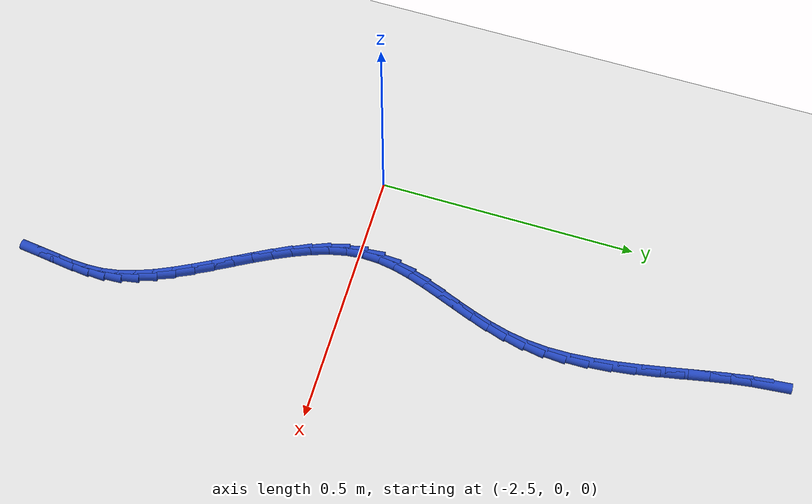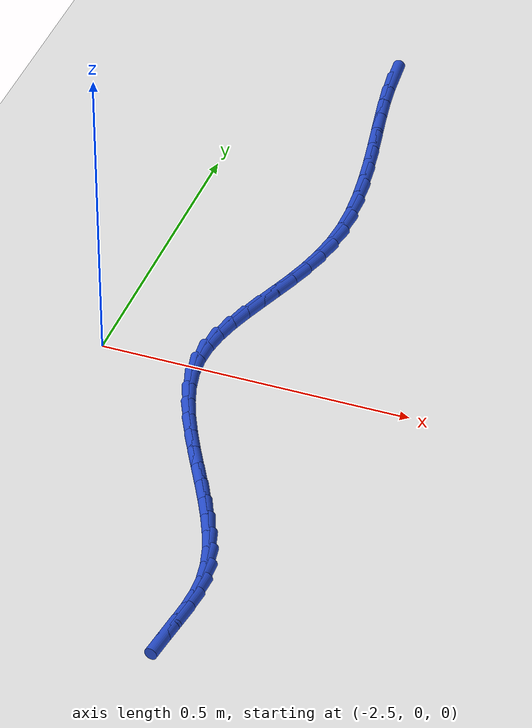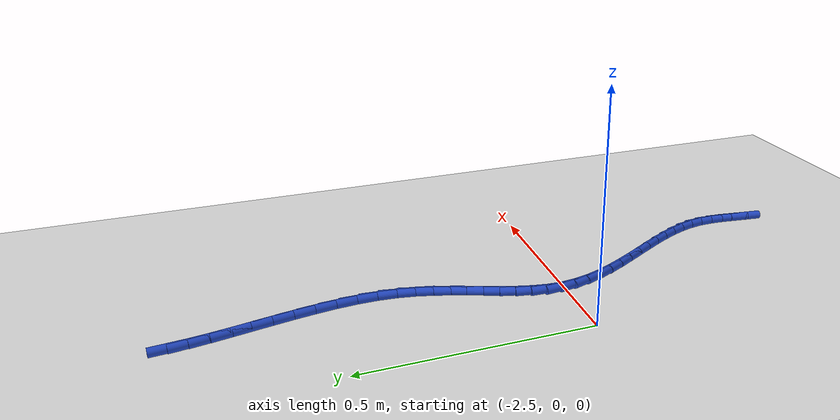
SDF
<sdf version="1.6">
 <world name="default">
  <model name="ground_plane">
   <static>1</static>
   <link name="link">
    <collision name="collision">
     <geometry><plane><normal>0 0 1</normal><size>100 100</size></plane></geometry>
     <surface><friction><ode><mu>100</mu><mu2>50</mu2></ode></friction></surface>
    </collision>
    <visual name="visual">
     <cast_shadows>0</cast_shadows>
     <geometry><plane><normal>0 0 1</normal><size>100 100</size></plane></geometry>
     <material>
      <script><uri>file://media/materials/scripts/gazebo.material</uri><name>Gazebo/WhiteGlow</name></script>
     </material>
    </visual>
   </link>
  </model>
  <model name="line">
   <link name="link_101">
    <pose>-2.3047676219274273 0.8106523391239772 0.01 0 1.57 -1.476728162494435</pose>
    <collision name="collision">
     <geometry><cylinder><radius>0.01</radius><length>0.08</length></cylinder></geometry>
    </collision>
    <visual name="visual">
     <material>
      <script><name>Gazebo/Blue</name><uri>file://media/materials/scripts/gazebo.material</uri></script>
     </material>
     <geometry><cylinder><radius>0.01</radius><length>0.08</length></cylinder></geometry>
    </visual>
   </link>
   <link name="link_102">
    <pose>-2.301472422030796 0.7757258085661666 0.01 0 1.57 -1.424585987573197</pose>
    <collision name="collision">
     <geometry><cylinder><radius>0.01</radius><length>0.08</length></cylinder></geometry>
    </collision>
    <visual name="visual">
     <material>
      <script><name>Gazebo/Blue</name><uri>file://media/materials/scripts/gazebo.material</uri></script>
     </material>
     <geometry><cylinder><radius>0.01</radius><length>0.08</length></cylinder></geometry>
    </visual>
   </link>
   <link name="link_103">
    <pose>-2.2959237080235573 0.7380464048490337 0.01 0 1.57 -1.3935737153858418</pose>
    <collision name="collision">
     <geometry><cylinder><radius>0.01</radius><length>0.08</length></cylinder></geometry>
    </collision>
    <visual name="visual">
     <material>
      <script><name>Gazebo/Blue</name><uri>file://media/materials/scripts/gazebo.material</uri></script>
     </material>
     <geometry><cylinder><radius>0.01</radius><length>0.08</length></cylinder></geometry>
    </visual>
   </link>
   <link name="link_104">
    <pose>-2.2887683608237617 0.6980950778008433 0.01 0 1.57 -1.378781988183051</pose>
    <collision name="collision">
     <geometry><cylinder><radius>0.01</radius><length>0.08</length></cylinder></geometry>
    </collision>
    <visual name="visual">
     <material>
      <script><name>Gazebo/Blue</name><uri>file://media/materials/scripts/gazebo.material</uri></script>
     </material>
     <geometry><cylinder><radius>0.01</radius><length>0.08</length></cylinder></geometry>
    </visual>
   </link>
   <link name="link_105">
    <pose>-2.280653261349464 0.6563527772498619 0.01 0 1.57 -1.3774799241500921</pose>
    <collision name="collision">
     <geometry><cylinder><radius>0.01</radius><length>0.08</length></cylinder></geometry>
    </collision>
    <visual name="visual">
     <material>
      <script><name>Gazebo/Blue</name><uri>file://media/materials/scripts/gazebo.material</uri></script>
     </material>
     <geometry><cylinder><radius>0.01</radius><length>0.08</length></cylinder></geometry>
    </visual>
   </link>
   <link name="link_106">
    <pose>-2.2722252905187155 0.6133004530243545 0.01 0 1.57 -1.3883955878680676</pose>
    <collision name="collision">
     <geometry><cylinder><radius>0.01</radius><length>0.08</length></cylinder></geometry>
    </collision>
    <visual name="visual">
     <material>
      <script><name>Gazebo/Blue</name><uri>file://media/materials/scripts/gazebo.material</uri></script>
     </material>
     <geometry><cylinder><radius>0.01</radius><length>0.08</length></cylinder></geometry>
    </visual>
   </link>
   <link name="link_107">
    <pose>-2.2641313292495697 0.5694190549525865 0.01 0 1.57 -1.411339892921997</pose>
    <collision name="collision">
     <geometry><cylinder><radius>0.01</radius><length>0.08</length></cylinder></geometry>
    </collision>
    <visual name="visual">
     <material>
      <script><name>Gazebo/Blue</name><uri>file://media/materials/scripts/gazebo.material</uri></script>
     </material>
     <geometry><cylinder><radius>0.01</radius><length>0.08</length></cylinder></geometry>
    </visual>
   </link>
   <link name="link_108">
    <pose>-2.2570182584600778 0.5251895328628228 0.01 0 1.57 -1.4470395061883565</pose>
    <collision name="collision">
     <geometry><cylinder><radius>0.01</radius><length>0.08</length></cylinder></geometry>
    </collision>
    <visual name="visual">
     <material>
      <script><name>Gazebo/Blue</name><uri>file://media/materials/scripts/gazebo.material</uri></script>
     </material>
     <geometry><cylinder><radius>0.01</radius><length>0.08</length></cylinder></geometry>
    </visual>
   </link>
   <link name="link_109">
    <pose>-2.251532959068294 0.4810928365833301 0.01 0 1.57 -1.497093104148383</pose>
    <collision name="collision">
     <geometry><cylinder><radius>0.01</radius><length>0.08</length></cylinder></geometry>
    </collision>
    <visual name="visual">
     <material>
      <script><name>Gazebo/Blue</name><uri>file://media/materials/scripts/gazebo.material</uri></script>
     </material>
     <geometry><cylinder><radius>0.01</radius><length>0.08</length></cylinder></geometry>
    </visual>
   </link>
   <link name="link_110">
    <pose>-2.24832231199227 0.4376099159423732 0.01 0 1.57 -1.5639758108972208</pose>
    <collision name="collision">
     <geometry><cylinder><radius>0.01</radius><length>0.08</length></cylinder></geometry>
    </collision>
    <visual name="visual">
     <material>
      <script><name>Gazebo/Blue</name><uri>file://media/materials/scripts/gazebo.material</uri></script>
     </material>
     <geometry><cylinder><radius>0.01</radius><length>0.08</length></cylinder></geometry>
    </visual>
   </link>
   <link name="link_111">
    <pose>-2.2480331981500594 0.39522172076821754 0.01 0 1.57 1.4909521595586843</pose>
    <collision name="collision">
     <geometry><cylinder><radius>0.01</radius><length>0.08</length></cylinder></geometry>
    </collision>
    <visual name="visual">
     <material>
      <script><name>Gazebo/Blue</name><uri>file://media/materials/scripts/gazebo.material</uri></script>
     </material>
     <geometry><cylinder><radius>0.01</radius><length>0.08</length></cylinder></geometry>
    </visual>
   </link>
   <link name="link_112">
    <pose>-2.2512992742586717 0.3544030516151913 0.01 0 1.57 1.3969669167732273</pose>
    <collision name="collision">
     <geometry><cylinder><radius>0.01</radius><length>0.08</length></cylinder></geometry>
    </collision>
    <visual name="visual">
     <material>
      <script><name>Gazebo/Blue</name><uri>file://media/materials/scripts/gazebo.material</uri></script>
     </material>
     <geometry><cylinder><radius>0.01</radius><length>0.08</length></cylinder></geometry>
    </visual>
   </link>
   <link name="link_113">
    <pose>-2.2581568873942817 0.3153509591308433 0.01 0 1.57 1.3185644996771948</pose>
    <collision name="collision">
     <geometry><cylinder><radius>0.01</radius><length>0.08</length></cylinder></geometry>
    </collision>
    <visual name="visual">
     <material>
      <script><name>Gazebo/Blue</name><uri>file://media/materials/scripts/gazebo.material</uri></script>
     </material>
     <geometry><cylinder><radius>0.01</radius><length>0.08</length></cylinder></geometry>
    </visual>
   </link>
   <link name="link_114">
    <pose>-2.2678145569720853 0.27787755282005805 0.01 0 1.57 1.2598409074282304</pose>
    <collision name="collision">
     <geometry><cylinder><radius>0.01</radius><length>0.08</length></cylinder></geometry>
    </collision>
    <visual name="visual">
     <material>
      <script><name>Gazebo/Blue</name><uri>file://media/materials/scripts/gazebo.material</uri></script>
     </material>
     <geometry><cylinder><radius>0.01</radius><length>0.08</length></cylinder></geometry>
    </visual>
   </link>
   <link name="link_115">
    <pose>-2.279419929650581 0.24176663626170972 0.01 0 1.57 1.222371077311019</pose>
    <collision name="collision">
     <geometry><cylinder><radius>0.01</radius><length>0.08</length></cylinder></geometry>
    </collision>
    <visual name="visual">
     <material>
      <script><name>Gazebo/Blue</name><uri>file://media/materials/scripts/gazebo.material</uri></script>
     </material>
     <geometry><cylinder><radius>0.01</radius><length>0.08</length></cylinder></geometry>
    </visual>
   </link>
   <link name="link_116">
    <pose>-2.292120652088264 0.20680201303467408 0.01 0 1.57 1.2073772244103476</pose>
    <collision name="collision">
     <geometry><cylinder><radius>0.01</radius><length>0.08</length></cylinder></geometry>
    </collision>
    <visual name="visual">
     <material>
      <script><name>Gazebo/Blue</name><uri>file://media/materials/scripts/gazebo.material</uri></script>
     </material>
     <geometry><cylinder><radius>0.01</radius><length>0.08</length></cylinder></geometry>
    </visual>
   </link>
   <link name="link_117">
    <pose>-2.305064370943632 0.17276748671782516 0.01 0 1.57 1.2162651479355358</pose>
    <collision name="collision">
     <geometry><cylinder><radius>0.01</radius><length>0.08</length></cylinder></geometry>
    </collision>
    <visual name="visual">
     <material>
      <script><name>Gazebo/Blue</name><uri>file://media/materials/scripts/gazebo.material</uri></script>
     </material>
     <geometry><cylinder><radius>0.01</radius><length>0.08</length></cylinder></geometry>
    </visual>
   </link>
   <link name="link_118">
    <pose>-2.317398732875182 0.1394468608900377 0.01 0 1.57 1.250920327592526</pose>
    <collision name="collision">
     <geometry><cylinder><radius>0.01</radius><length>0.08</length></cylinder></geometry>
    </collision>
    <visual name="visual">
     <material>
      <script><name>Gazebo/Blue</name><uri>file://media/materials/scripts/gazebo.material</uri></script>
     </material>
     <geometry><cylinder><radius>0.01</radius><length>0.08</length></cylinder></geometry>
    </visual>
   </link>
   <link name="link_119">
    <pose>-2.3282713845414107 0.10662393913018584 0.01 0 1.57 1.3136146482840088</pose>
    <collision name="collision">
     <geometry><cylinder><radius>0.01</radius><length>0.08</length></cylinder></geometry>
    </collision>
    <visual name="visual">
     <material>
      <script><name>Gazebo/Blue</name><uri>file://media/materials/scripts/gazebo.material</uri></script>
     </material>
     <geometry><cylinder><radius>0.01</radius><length>0.08</length></cylinder></geometry>
    </visual>
   </link>
   <link name="link_120">
    <pose>-2.3368299726008144 0.0740825250171452 0.01 0 1.57 1.4062622658599033</pose>
    <collision name="collision">
     <geometry><cylinder><radius>0.01</radius><length>0.08</length></cylinder></geometry>
    </collision>
    <visual name="visual">
     <material>
      <script><name>Gazebo/Blue</name><uri>file://media/materials/scripts/gazebo.material</uri></script>
     </material>
     <geometry><cylinder><radius>0.01</radius><length>0.08</length></cylinder></geometry>
    </visual>
   </link>
   <link name="link_121">
    <pose>-2.342222143711891 0.04160642212978989 0.01 0 1.57 1.5287271508078735</pose>
    <collision name="collision">
     <geometry><cylinder><radius>0.01</radius><length>0.08</length></cylinder></geometry>
    </collision>
    <visual name="visual">
     <material>
      <script><name>Gazebo/Blue</name><uri>file://media/materials/scripts/gazebo.material</uri></script>
     </material>
     <geometry><cylinder><radius>0.01</radius><length>0.08</length></cylinder></geometry>
    </visual>
   </link>
   <link name="link_122">
    <pose>-2.3435955445331365 0.008979434046994639 0.01 0 1.57 -1.4719363540284025</pose>
    <collision name="collision">
     <geometry><cylinder><radius>0.01</radius><length>0.08</length></cylinder></geometry>
    </collision>
    <visual name="visual">
     <material>
      <script><name>Gazebo/Blue</name><uri>file://media/materials/scripts/gazebo.material</uri></script>
     </material>
     <geometry><cylinder><radius>0.01</radius><length>0.08</length></cylinder></geometry>
    </visual>
   </link>
   <link name="link_123">
    <pose>-2.3403272644533026 -0.02397248529243 0.01 0 1.57 -1.348669982984383</pose>
    <collision name="collision">
     <geometry><cylinder><radius>0.01</radius><length>0.08</length></cylinder></geometry>
    </collision>
    <visual name="visual">
     <material>
      <script><name>Gazebo/Blue</name><uri>file://media/materials/scripts/gazebo.material</uri></script>
     </material>
     <geometry><cylinder><radius>0.01</radius><length>0.08</length></cylinder></geometry>
    </visual>
   </link>
   <link name="link_124">
    <pose>-2.3328146032130057 -0.05723596161391606 0.01 0 1.57 -1.2515611671226896</pose>
    <collision name="collision">
     <geometry><cylinder><radius>0.01</radius><length>0.08</length></cylinder></geometry>
    </collision>
    <visual name="visual">
     <material>
      <script><name>Gazebo/Blue</name><uri>file://media/materials/scripts/gazebo.material</uri></script>
     </material>
     <geometry><cylinder><radius>0.01</radius><length>0.08</length></cylinder></geometry>
    </visual>
   </link>
   <link name="link_125">
    <pose>-2.3217383184283404 -0.09074554729341655 0.01 0 1.57 -1.1779912726517137</pose>
    <collision name="collision">
     <geometry><cylinder><radius>0.01</radius><length>0.08</length></cylinder></geometry>
    </collision>
    <visual name="visual">
     <material>
      <script><name>Gazebo/Blue</name><uri>file://media/materials/scripts/gazebo.material</uri></script>
     </material>
     <geometry><cylinder><radius>0.01</radius><length>0.08</length></cylinder></geometry>
    </visual>
   </link>
   <link name="link_126">
    <pose>-2.3077791789041533 -0.12443579265142414 0.01 0 1.57 -1.1248497054536495</pose>
    <collision name="collision">
     <geometry><cylinder><radius>0.01</radius><length>0.08</length></cylinder></geometry>
    </collision>
    <visual name="visual">
     <material>
      <script><name>Gazebo/Blue</name><uri>file://media/materials/scripts/gazebo.material</uri></script>
     </material>
     <geometry><cylinder><radius>0.01</radius><length>0.08</length></cylinder></geometry>
    </visual>
   </link>
   <link name="link_127">
    <pose>-2.2916179534452903 -0.15824124800843425 0.01 0 1.57 -1.0894691346177487</pose>
    <collision name="collision">
     <geometry><cylinder><radius>0.01</radius><length>0.08</length></cylinder></geometry>
    </collision>
    <visual name="visual">
     <material>
      <script><name>Gazebo/Blue</name><uri>file://media/materials/scripts/gazebo.material</uri></script>
     </material>
     <geometry><cylinder><radius>0.01</radius><length>0.08</length></cylinder></geometry>
    </visual>
   </link>
   <link name="link_128">
    <pose>-2.2739354108565957 -0.19209646368494146 0.01 0 1.57 -1.0699666072451477</pose>
    <collision name="collision">
     <geometry><cylinder><radius>0.01</radius><length>0.08</length></cylinder></geometry>
    </collision>
    <visual name="visual">
     <material>
      <script><name>Gazebo/Blue</name><uri>file://media/materials/scripts/gazebo.material</uri></script>
     </material>
     <geometry><cylinder><radius>0.01</radius><length>0.08</length></cylinder></geometry>
    </visual>
   </link>
   <link name="link_129">
    <pose>-2.255412319942915 -0.22593599000144024 0.01 0 1.57 -1.0653243005387842</pose>
    <collision name="collision">
     <geometry><cylinder><radius>0.01</radius><length>0.08</length></cylinder></geometry>
    </collision>
    <visual name="visual">
     <material>
      <script><name>Gazebo/Blue</name><uri>file://media/materials/scripts/gazebo.material</uri></script>
     </material>
     <geometry><cylinder><radius>0.01</radius><length>0.08</length></cylinder></geometry>
    </visual>
   </link>
   <link name="link_130">
    <pose>-2.236729449509094 -0.25969437727842515 0.01 0 1.57 -1.0753979749845997</pose>
    <collision name="collision">
     <geometry><cylinder><radius>0.01</radius><length>0.08</length></cylinder></geometry>
    </collision>
    <visual name="visual">
     <material>
      <script><name>Gazebo/Blue</name><uri>file://media/materials/scripts/gazebo.material</uri></script>
     </material>
     <geometry><cylinder><radius>0.01</radius><length>0.08</length></cylinder></geometry>
    </visual>
   </link>
   <link name="link_131">
    <pose>-2.218567568359977 -0.2933061758363907 0.01 0 1.57 -1.100934755562982</pose>
    <collision name="collision">
     <geometry><cylinder><radius>0.01</radius><length>0.08</length></cylinder></geometry>
    </collision>
    <visual name="visual">
     <material>
      <script><name>Gazebo/Blue</name><uri>file://media/materials/scripts/gazebo.material</uri></script>
     </material>
     <geometry><cylinder><radius>0.01</radius><length>0.08</length></cylinder></geometry>
    </visual>
   </link>
   <link name="link_132">
    <pose>-2.2016074453004095 -0.3267059359958322 0.01 0 1.57 -1.1436180508070122</pose>
    <collision name="collision">
     <geometry><cylinder><radius>0.01</radius><length>0.08</length></cylinder></geometry>
    </collision>
    <visual name="visual">
     <material>
      <script><name>Gazebo/Blue</name><uri>file://media/materials/scripts/gazebo.material</uri></script>
     </material>
     <geometry><cylinder><radius>0.01</radius><length>0.08</length></cylinder></geometry>
    </visual>
   </link>
   <link name="link_133">
    <pose>-2.186529849135238 -0.3598282080772425 0.01 0 1.57 -1.206099996614414</pose>
    <collision name="collision">
     <geometry><cylinder><radius>0.01</radius><length>0.08</length></cylinder></geometry>
    </collision>
    <visual name="visual">
     <material>
      <script><name>Gazebo/Blue</name><uri>file://media/materials/scripts/gazebo.material</uri></script>
     </material>
     <geometry><cylinder><radius>0.01</radius><length>0.08</length></cylinder></geometry>
    </visual>
   </link>
   <link name="link_134">
    <pose>-2.1740155486693067 -0.39260754240111695 0.01 0 1.57 -1.2918857527526852</pose>
    <collision name="collision">
     <geometry><cylinder><radius>0.01</radius><length>0.08</length></cylinder></geometry>
    </collision>
    <visual name="visual">
     <material>
      <script><name>Gazebo/Blue</name><uri>file://media/materials/scripts/gazebo.material</uri></script>
     </material>
     <geometry><cylinder><radius>0.01</radius><length>0.08</length></cylinder></geometry>
    </visual>
   </link>
   <link name="link_135">
    <pose>-2.164745312707461 -0.4249784892879501 0.01 0 1.57 -1.404572114394251</pose>
    <collision name="collision">
     <geometry><cylinder><radius>0.01</radius><length>0.08</length></cylinder></geometry>
    </collision>
    <visual name="visual">
     <material>
      <script><name>Gazebo/Blue</name><uri>file://media/materials/scripts/gazebo.material</uri></script>
     </material>
     <geometry><cylinder><radius>0.01</radius><length>0.08</length></cylinder></geometry>
    </visual>
   </link>
   <link name="link_136">
    <pose>-2.1593935261820394 -0.45687760066339755 0.01 0 1.57 -1.5280845577085063</pose>
    <collision name="collision">
     <geometry><cylinder><radius>0.01</radius><length>0.08</length></cylinder></geometry>
    </collision>
    <visual name="visual">
     <material>
      <script><name>Gazebo/Blue</name><uri>file://media/materials/scripts/gazebo.material</uri></script>
     </material>
     <geometry><cylinder><radius>0.01</radius><length>0.08</length></cylinder></geometry>
    </visual>
   </link>
   <link name="link_137">
    <pose>-2.1580452088913784 -0.4884262185304206 0.01 0 1.57 1.517679830727514</pose>
    <collision name="collision">
     <geometry><cylinder><radius>0.01</radius><length>0.08</length></cylinder></geometry>
    </collision>
    <visual name="visual">
     <material>
      <script><name>Gazebo/Blue</name><uri>file://media/materials/scripts/gazebo.material</uri></script>
     </material>
     <geometry><cylinder><radius>0.01</radius><length>0.08</length></cylinder></geometry>
    </visual>
   </link>
   <link name="link_138">
    <pose>-2.1597279821909656 -0.5200772225563655 0.01 0 1.57 1.4586369909005414</pose>
    <collision name="collision">
     <geometry><cylinder><radius>0.01</radius><length>0.08</length></cylinder></geometry>
    </collision>
    <visual name="visual">
     <material>
      <script><name>Gazebo/Blue</name><uri>file://media/materials/scripts/gazebo.material</uri></script>
     </material>
     <geometry><cylinder><radius>0.01</radius><length>0.08</length></cylinder></geometry>
    </visual>
   </link>
   <link name="link_139">
    <pose>-2.163359329103804 -0.5523180252809858 0.01 0 1.57 1.4366231724127883</pose>
    <collision name="collision">
     <geometry><cylinder><radius>0.01</radius><length>0.08</length></cylinder></geometry>
    </collision>
    <visual name="visual">
     <material>
      <script><name>Gazebo/Blue</name><uri>file://media/materials/scripts/gazebo.material</uri></script>
     </material>
     <geometry><cylinder><radius>0.01</radius><length>0.08</length></cylinder></geometry>
    </visual>
   </link>
   <link name="link_140">
    <pose>-2.1678567326528975 -0.5856360392440355 0.01 0 1.57 1.4486827610150557</pose>
    <collision name="collision">
     <geometry><cylinder><radius>0.01</radius><length>0.08</length></cylinder></geometry>
    </collision>
    <visual name="visual">
     <material>
      <script><name>Gazebo/Blue</name><uri>file://media/materials/scripts/gazebo.material</uri></script>
     </material>
     <geometry><cylinder><radius>0.01</radius><length>0.08</length></cylinder></geometry>
    </visual>
   </link>
  </model>
 </world>
</sdf>
